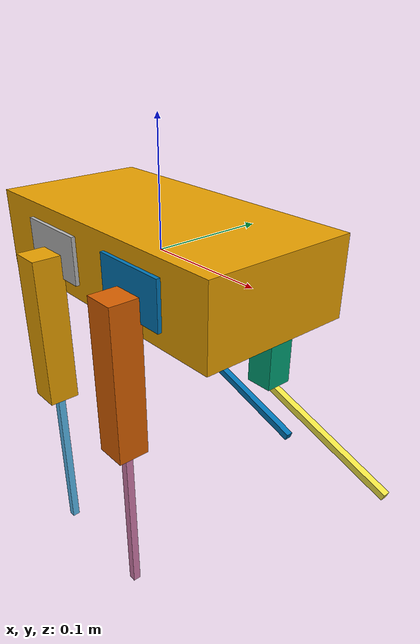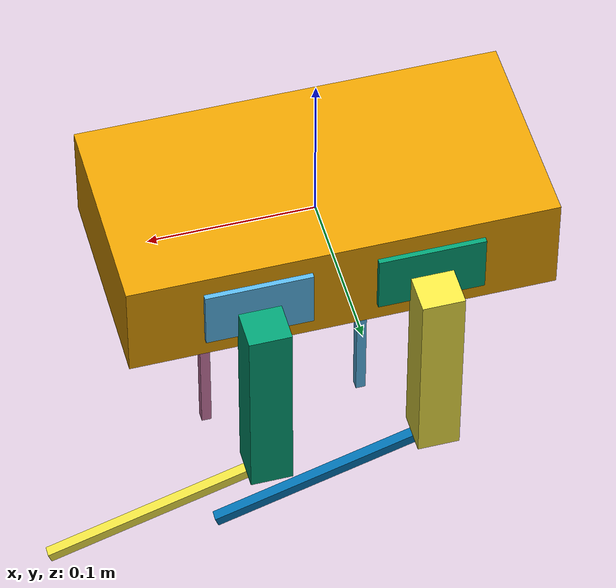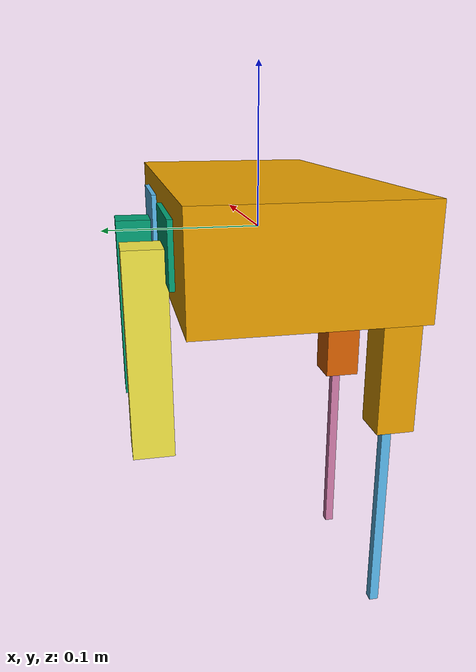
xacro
<?xml version="1.0"?>
<robot xmlns:xacro="http://www.ros.org/wiki/xacro" name="robot">
    <xacro:arg name="initial_positions_file" default="initial_positions.yaml" />

    <!-- Import robot urdf file -->
    <xacro:include filename="$(find servo_controller)/urdf/fixed_urdf.urdf" />

    <!-- Import control_xacro -->
    <xacro:include filename="robot.ros2_control.xacro" />

    <xacro:robot_ros2_control name="FakeSystem" initial_positions_file="$(arg initial_positions_file)"/>

</robot>

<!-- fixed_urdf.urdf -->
<robot xmlns:xacro="http://www.ros.org/wiki/xacro" name="robot">

    <link name="base_link">
        <visual>
            <geometry>
                <box size="0.254 0.127 0.0635"/>
            </geometry>
        </visual>
        <collision>
            <geometry>
                <box size="0.254 0.127 0.0635"/>
            </geometry>
        </collision>
        <inertial>
            <origin xyz="0.000 0.000 0.000" rpy ="0.000 0.000 0.000"/>
            <mass value="2.000"/>
            <inertia
              ixx="0.03562" ixy="0.00000" ixz="0.00000"
              iyy="0.04262" iyz="0.00000"
              izz="0.04508"/>
          </inertial>
    </link>

    <!-- FL -->
    <joint name="hip_fl" type="revolute">
        <limit upper="0.4" effort="100" velocity="10" lower="-0.2"/>
        <origin xyz ="0.0508 0.0508 0" rpy="0 0 0"/>
        <parent link="base_link"/>
        <child link = "hipbone_fl"/>
    </joint>

    <link name="hipbone_fl">
        <visual>
            <origin xyz=" 0.0 0.0 0" rpy = "0 0 0"/>

            <geometry>

                <box size = "0.0635 0.03175 0.0381"/>
            </geometry>
        </visual>
        <collision>
            <origin xyz=" 0.0 0.0 0" rpy = "0 0 0"/>

            <geometry>

                <box size = "0.0635 0.03175 0.0381"/>
            </geometry>
        </collision>
    </link>

    <joint name="shoulder_fl" type="revolute">
        <limit upper="0.5" effort="100" velocity="10" lower="-0.1"/>

        <origin xyz="0 0 0" rpy = "0 0 0"/>
        <axis xyz="0 1 0"/>
        <parent link="hipbone_fl"/>
        <child link="femur_fl"/>
    </joint>

    <link name="femur_fl">
        <visual>
            <origin xyz="0.0 0.027 -0.0635" rpy="0 0 0"/>
            <geometry>

                <box size = "0.0254 0.0254 0.127"/>
            </geometry>

        </visual>
        <collision>
            <origin xyz="0.0 0.027 -0.0635" rpy="0 0 0"/>

            <geometry>
                <box size = "0.0254 0.0254 0.127"/>
            </geometry>
        </collision>
    </link>

    <joint name="knee_fl" type="revolute">
        <limit upper="-0.5" effort="100" velocity="10" lower="-2"/>

        <origin xyz="0 0 -0.127" rpy = "0 0 1.57"/>
        <parent link="femur_fl"/>
        <child link="tibia_fl"/>
    </joint>

    <link name="tibia_fl">
        <visual>
            <origin xyz="0.0254 0.0 -0.06985" rpy="0 0 0"/>
            <geometry>
                <box size = "0.00635 0.00635 0.1397"/>
            </geometry>
        </visual>
        <collision>
            <origin xyz="0.0254 0.0 -0.06985" rpy="0 0 0"/>

            <geometry>
                <box size = "0.00635 0.00635 0.1397"/>
            </geometry>
        </collision>
    </link>

    <!-- FR -->
    <joint name="hip_fr" type="revolute">
        <limit upper="0.4" effort="100" velocity="10" lower="-0.2"/>

        <origin xyz ="0.0508 -0.0508 0" rpy="0 0 3.14"/>
        <parent link="base_link"/>
        <child link = "hipbone_fr"/>
    </joint>

    <link name="hipbone_fr">
        <visual>
            <origin xyz=" 0.0 0.0 0" rpy = "0 0 0"/>

            <geometry>

                <box size = "0.0635 0.03175 0.0381"/>
            </geometry>
        </visual>
        <collision>
            <origin xyz=" 0.0 0.0 0" rpy = "0 0 0"/>

            <geometry>

                <box size = "0.0635 0.03175 0.0381"/>
            </geometry>
        </collision>
    </link>

    <joint name="shoulder_fr" type="revolute">
        <limit upper="0.1" effort="100" velocity="10" lower="-0.5"/>

        <origin xyz="0 0 0" rpy = "0 0 0"/>
        <axis xyz="0 1 0"/>
        <parent link="hipbone_fr"/>
        <child link="femur_fr"/>
    </joint>

    <link name="femur_fr">
        <visual>
            <origin xyz="0.0 0.027 -0.0635" rpy="0 0 0"/>
            <geometry>
                <box size = "0.0254 0.0254 0.127"/>
            </geometry>
        </visual>
        <collision>
            <origin xyz="0.0 0.027 -0.0635" rpy="0 0 0"/>

            <geometry>
                <box size = "0.0254 0.0254 0.127"/>
            </geometry>
        </collision>
    </link>

    <joint name="knee_fr" type="revolute">
        <limit upper="2" effort="100" velocity="10" lower="-0.5"/>

        <origin xyz="0 0 -0.127" rpy = "0 0 1.57"/>
        <parent link="femur_fr"/>
        <child link="tibia_fr"/>
    </joint>

    <link name="tibia_fr">
        <visual>
            <origin xyz="0.0254 0.0 -0.06985" rpy="0 0 0"/>
            <geometry>
                <box size = "0.00635 0.00635 0.1397"/>
            </geometry>
        </visual>
        <collision>
            <origin xyz="0.0254 0.0 -0.06985" rpy="0 0 0"/>

            <geometry>
                <box size = "0.00635 0.00635 0.1397"/>
            </geometry>
        </collision>
    </link>

    <!-- BR -->
    <joint name="hip_br" type="revolute">
        <limit upper="0.4" effort="100" velocity="10" lower="-0.2"/>

        <origin xyz ="-0.0508 -0.0508 0" rpy="0 0 3.14"/>
        <parent link="base_link"/>
        <child link = "hipbone_br"/>
    </joint>

    <link name="hipbone_br">
        <visual>
            <origin xyz=" 0.0 0.0 0" rpy = "0 0 0"/>

            <geometry>

                <box size = "0.0635 0.03175 0.0381"/>
            </geometry>
        </visual>
        <collision>
            <origin xyz=" 0.0 0.0 0" rpy = "0 0 0"/>

            <geometry>

                <box size = "0.0635 0.03175 0.0381"/>
            </geometry>
        </collision>
    </link>

    <joint name="shoulder_br" type="revolute">
        <limit upper="0.1" effort="100" velocity="10" lower="-0.5"/>

        <origin xyz="0 0 0" rpy = "0 0 0"/>
        <axis xyz="0 1 0"/>
        <parent link="hipbone_br"/>
        <child link="femur_br"/>
    </joint>

    <link name="femur_br">
        <visual>
            <origin xyz="0.0 0.027 -0.0635" rpy="0 0 0"/>
            <geometry>
                <box size = "0.0254 0.0254 0.127"/>
            </geometry>
        </visual>
        <collision>
            <origin xyz="0.0 0.027 -0.0635" rpy="0 0 0"/>

            <geometry>
                <box size = "0.0254 0.0254 0.127"/>
            </geometry>
        </collision>
    </link>

    <joint name="knee_br" type="revolute">
        <limit upper="2" effort="100" velocity="10" lower="-0.5"/>

        <origin xyz="0 0 -0.127" rpy = "0 0 1.57"/>
        <parent link="femur_br"/>
        <child link="tibia_br"/>
    </joint>

    <link name="tibia_br">
        <visual>
            <origin xyz="0.0254 0.0 -0.06985" rpy="0 0 0"/>
            <geometry>
                <box size = "0.00635 0.00635 0.1397"/>
            </geometry>
        </visual>
        <collision>
            <origin xyz="0.0254 0.0 -0.06985" rpy="0 0 0"/>
            <geometry>
                <box size = "0.00635 0.00635 0.1397"/>
            </geometry>
        </collision>
    </link>

    <!-- BL -->
    <joint name="hip_bl" type="revolute">]
        <limit upper="0.4" effort="100" velocity="10" lower="-0.2"/>

        <origin xyz ="-0.0508 0.0508 0" rpy="0 0 0"/>
        <parent link="base_link"/>
        <child link = "hipbone_bl"/>
    </joint>

    <link name="hipbone_bl">
        <visual>
            <origin xyz=" 0.0 0.0 0" rpy = "0 0 0"/>

            <geometry>

                <box size = "0.0635 0.03175 0.0381"/>
            </geometry>
        </visual>
        <collision>
            <origin xyz=" 0.0 0.0 0" rpy = "0 0 0"/>

            <geometry>

                <box size = "0.0635 0.03175 0.0381"/>
            </geometry>
        </collision>
    </link>

    <joint name="shoulder_bl" type="revolute">
        <limit upper="0.5" effort="100" velocity="10" lower="-0.1"/>

        <origin xyz="0 0 0" rpy = "0 0 0"/>
        <axis xyz="0 1 0"/>
        <parent link="hipbone_bl"/>
        <child link="femur_bl"/>
    </joint>

    <link name="femur_bl">
        <visual>
            <origin xyz="0.0 0.027 -0.0635" rpy="0 0 0"/>
            <geometry>
                <box size = "0.0254 0.0254 0.127"/>
            </geometry>
        </visual>
        <collision>
            <origin xyz="0.0 0.027 -0.0635" rpy="0 0 0"/>

            <geometry>
                <box size = "0.0254 0.0254 0.127"/>
            </geometry>
        </collision>
    </link>

    <joint name="knee_bl" type="revolute">
        <limit upper="-0.5" effort="100" velocity="10" lower="-2"/>

        <origin xyz="0 0 -0.127" rpy = "0 0 1.57"/>
        <parent link="femur_bl"/>
        <child link="tibia_bl"/>
    </joint>

    <link name="tibia_bl">
        <visual>
            <origin xyz="0.0254 0.0 -0.06985" rpy="0 0 0"/>
            <geometry>
                <box size = "0.00635 0.00635 0.1397"/>
            </geometry>
        </visual>
        <collision>
            <origin xyz="0.0254 0.0 -0.06985" rpy="0 0 0"/>

            <geometry>
                <box size = "0.00635 0.00635 0.1397"/>
            </geometry>
        </collision>

    </link>

</robot>
